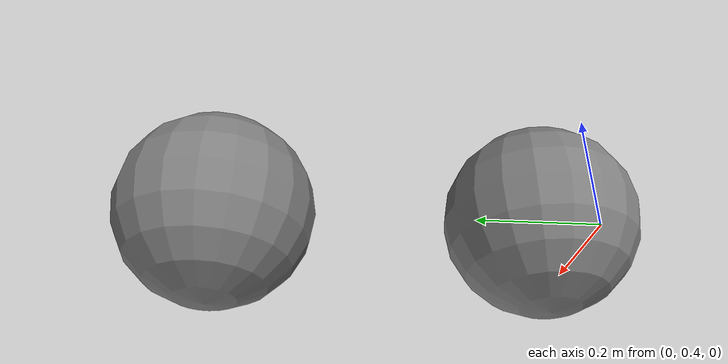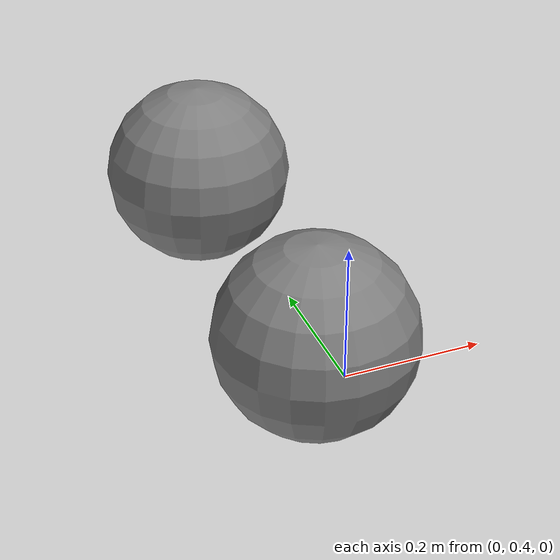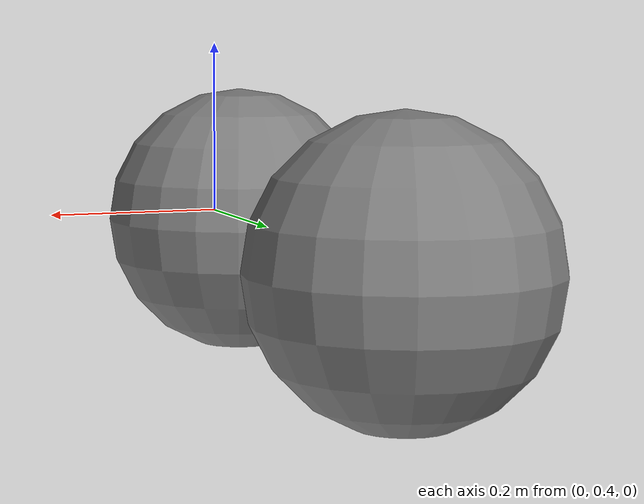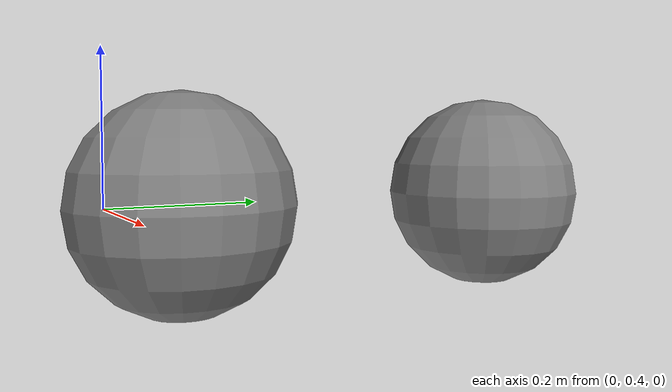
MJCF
<mujoco model="cherry_pendulum">
  <option timestep="0.02" solver="CG" iterations="6" ls_iterations="6"/>
  <default>
    <geom contype="0" conaffinity="0"/>
  </default>
  <worldbody>
    <body>
      <joint axis="1 0 0" type="hinge" range="-45 45"/>
      <geom pos="0 0.5 0" size=".15" mass="1" type="sphere"/>
      <body pos="0 0.5 0">
        <joint axis="1 0 0" type="hinge"/>
        <geom pos="0 0.5 0" size=".15" mass="2" type="sphere"/>
      </body>
      <body pos="0 0.5 0">
        <joint axis="1 0 0" type="hinge"/>
        <geom pos="0 0.5 0" size=".15" mass="3" type="sphere"/>
      </body>
    </body>
  </worldbody>
</mujoco>
